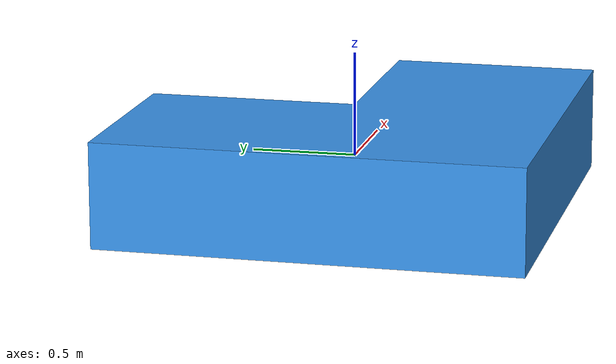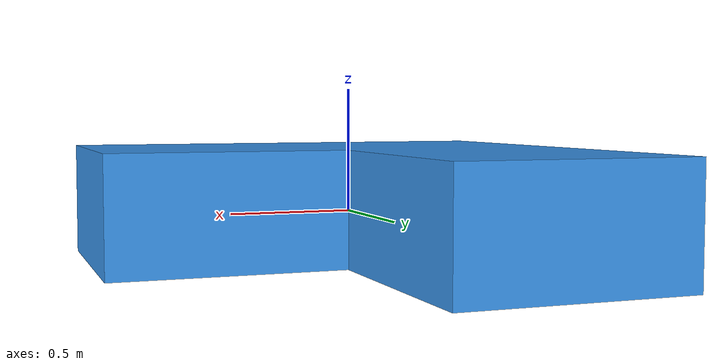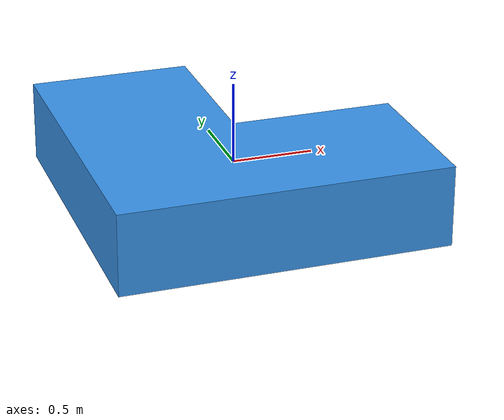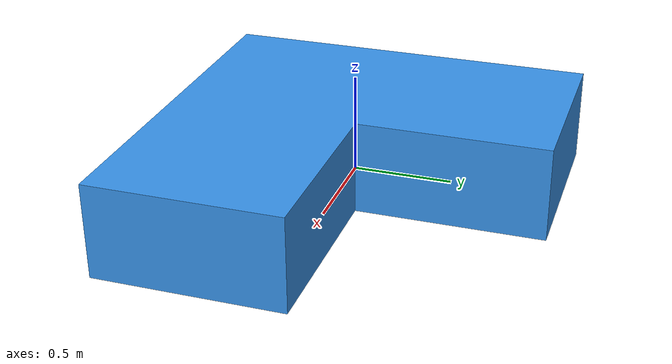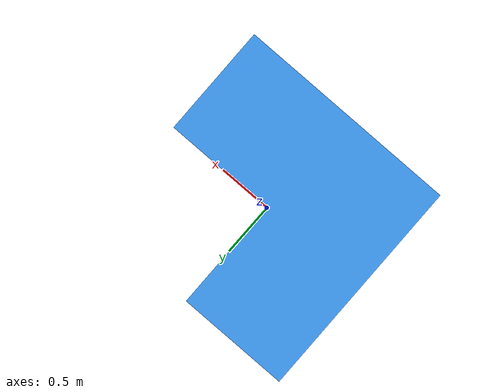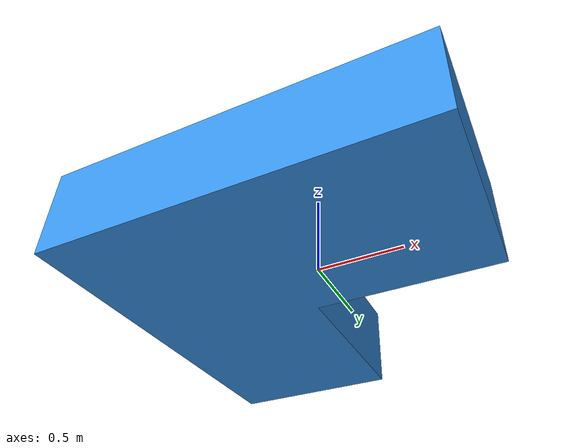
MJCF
<mujoco model="convex hull">
  <compiler angle="degree"/>
  <option gravity="0 0 0"/>

  <asset>
    <mesh name="concave_l"
          vertex="-1 -1 -0.25  1 -1 -0.25  1 0 -0.25  0 0 -0.25  0 1 -0.25  -1 1 -0.25
                  -1 -1  0.25  1 -1  0.25  1 0  0.25  0 0  0.25  0 1  0.25  -1 1  0.25"
          face="6 7 8  6 8 9  6 9 10  6 10 11
                0 2 1  0 3 2  0 4 3  0 5 4
                0 1 7  0 7 6  1 2 8  1 8 7  2 3 9  2 9 8
                3 4 10  3 10 9  4 5 11  4 11 10  5 0 6  5 6 11"/>
  </asset>

  <worldbody>
    <light pos="3 -4 6" dir="-0.4 0.5 -1" diffuse="0.9 0.9 0.9"/>
    <geom name="concave_collision_mesh" type="mesh" mesh="concave_l"
          rgba="0.22 0.58 0.92 1"/>
  </worldbody>
</mujoco>
